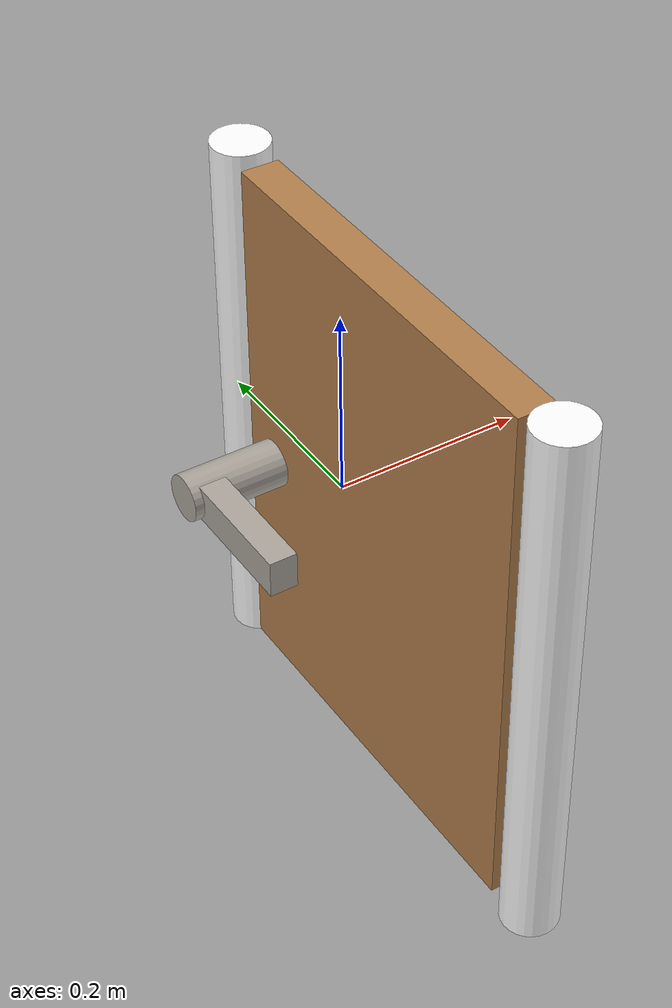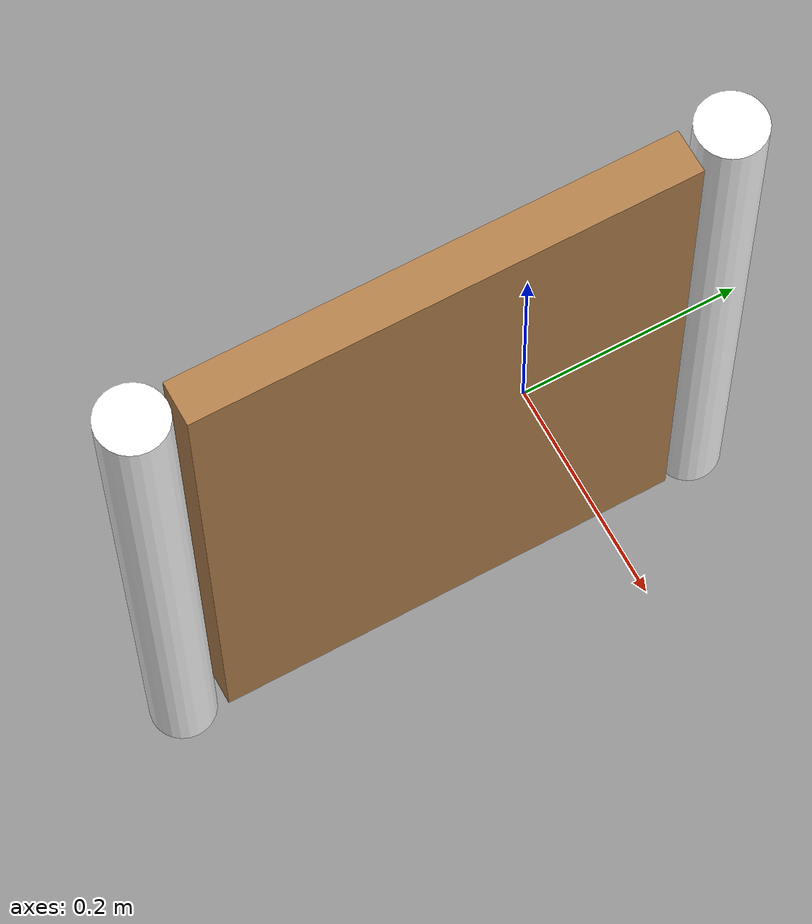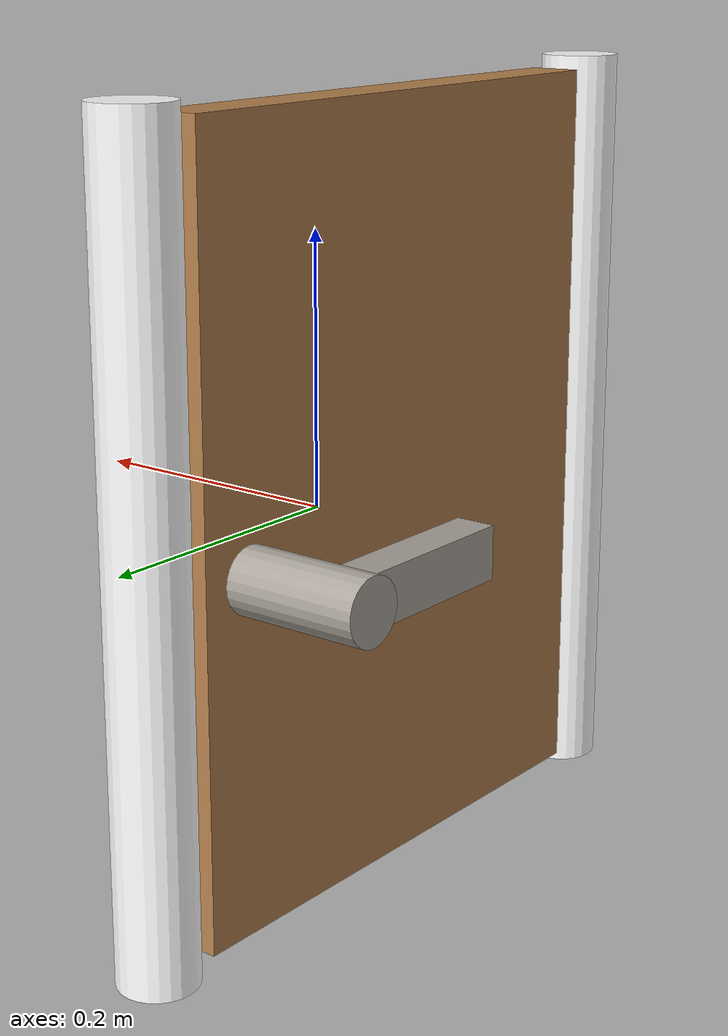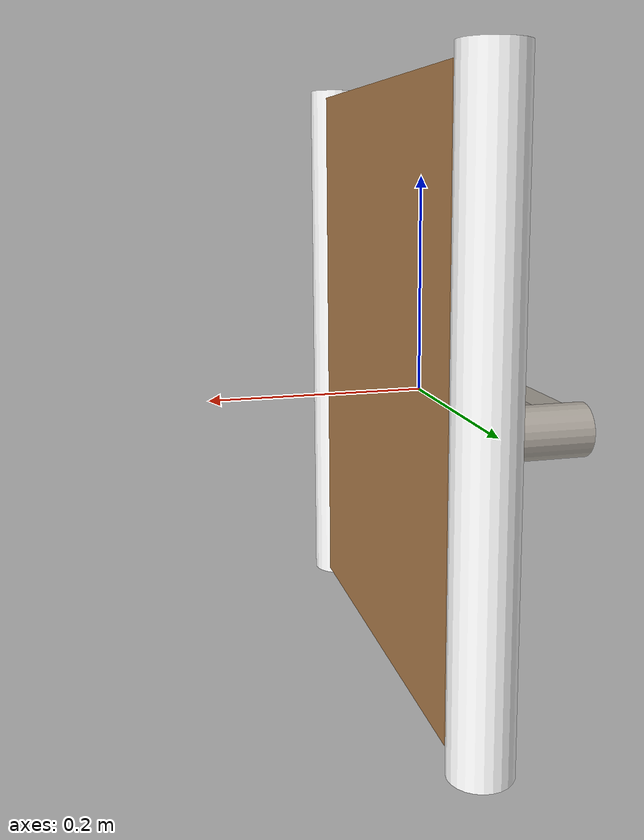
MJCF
<?xml version="1.0" encoding="utf-8"?>
<!-- from https://github.com/vikashplus/mj_envs/tree/master/mj_envs/hand_manipulation_suite/assets -->
<!-- Information about door can be found in this paper: https://arxiv.org/pdf/1709.10087.pdf -->

<mujoco model="door_lock">
  <asset>
    <texture file="../textures/light-wood.png" type="cube" name="light-wood" />
    <texture file="../textures/dark-wood.png" type="cube" name="dark-wood" />
    <texture file="../textures/brass-ambra.png" type="cube" name="metal" />
    <material name="MatMetal" texture="metal" specular="1" shininess="0.3" rgba="0.9 0.9 0.9 1" />
    <material name="MatDarkWood" texture="dark-wood" texrepeat="3 3" specular="0.4" shininess="0.1" />
    <material name="MatLightWood" texture="light-wood" texrepeat="3 3" specular="0.4" shininess="0.1" />
  </asset>
    <worldbody>
      <body>
        <body name="object">
          <body name="frame" pos="0 0.22 0" quat="0.707388 0 0 -0.706825">
              <inertial pos="0.3 0 0" quat="0.5 0.5 0.5 0.5" mass="7.85398" diaginertia="0.923301 0.764585 0.168533" />
              <geom size="0.03 0.3" pos="0.555 0 0" type="cylinder" rgba="1 1 1 1" group="1" name="r_frame"/>
              <geom size="0.03 0.3" pos="0.045 0 0" type="cylinder" rgba="1 1 1 1" group="1" name="l_frame"/>
              <body name="door" pos="0.3 0 0">
                  <inertial pos="0.0296816 -0.00152345 0" quat="0.701072 0 0 0.713091" mass="2.43455" diaginertia="0.0913751 0.0521615 0.043714" />
                  <joint name="hinge" pos="0.255 0 0" axis="0 0 1" range="0.0 1.0" damping="1" frictionloss="1" limited="true"/>
                  <site name="hinge_site" pos="0.255 0 0" rgba="0 0 0 0" size="0.005"/>
                  <geom size="0.22 0.02 .29" type="box" friction="1 1 1" group="1" name="panel" material="MatDarkWood"/>
                  <body name="latch" pos="-0.175 0 -0.025">
                      <inertial pos="-0.017762 0.0138544 0" quat="0.365653 0.605347 -0.36522 0.605365" mass="0.1" diaginertia="0.0483771 0.0410001 0.0111013" />
                      <geom fromto="0 0 0 0 -0.125 0" size="0.025" type="cylinder" group="1" name="handle_base" material="MatMetal"/>
                      <geom size="0.075 0.015 0.02" pos="0.075 -0.10 0" type="box" group="1" name="handle" material="MatMetal"/>
                      <!-- Don't render the door handle site by default -->
                      <site name="handle" pos="0.125 -0.10 0" size="0.02" rgba="0 0 1 0" />
                  </body>
              </body>
          </body>
        </body>
        <site name="bottom_site" pos="0 0 -0.3" rgba="0 0 0 0" size="0.005"/>
        <site name="top_site" pos="0 0 0.3" rgba="0 0 0 0" size="0.005"/>
        <site name="horizontal_radius_site" pos="0.3 0 0" rgba="0 0 0 0" size="0.1"/>
      </body>
    </worldbody>
</mujoco>
